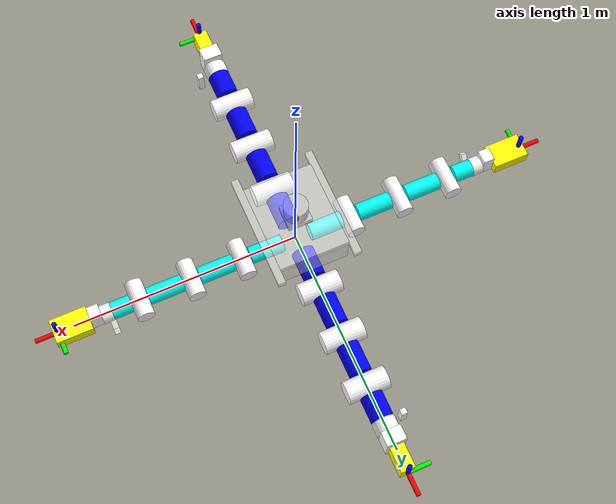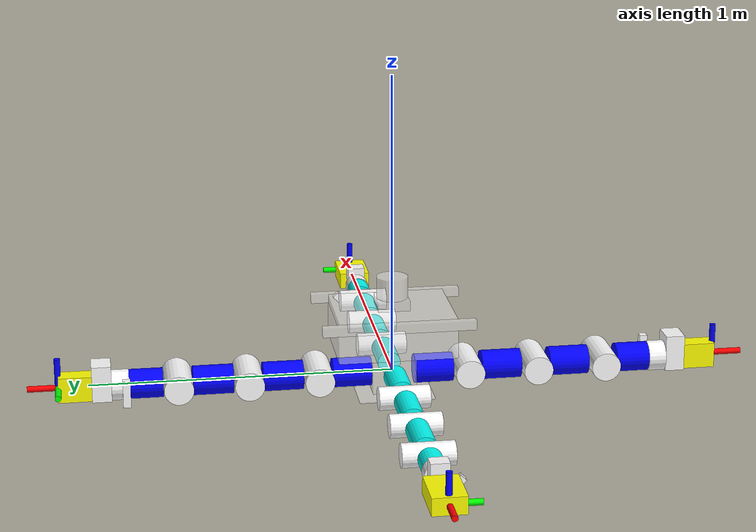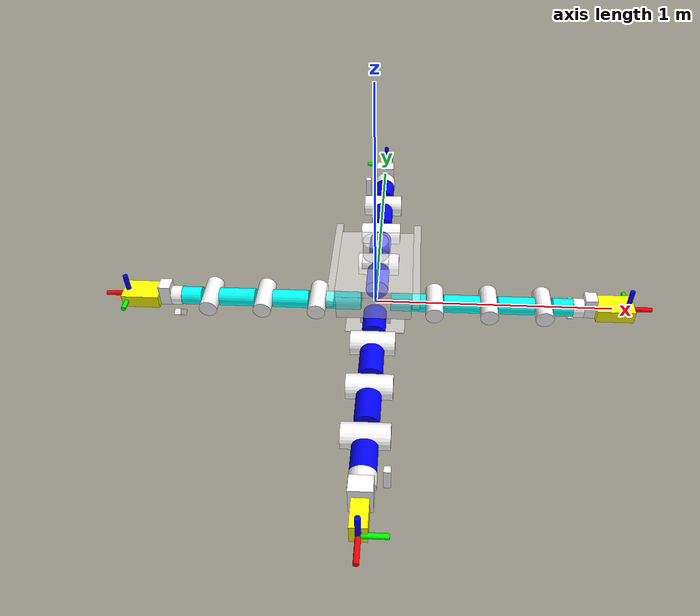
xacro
<?xml version="1.0"?>
<robot xmlns:xacro="http://www.ros.org/wiki/xacro" name="ivr">
    <xacro:arg name="initial_positions_file" default="initial_positions.yaml" />

    <!-- Import ivr urdf file -->
    <xacro:include filename="$(find jaxa_config)/config/jaxa.urdf" />

    <!-- Import control_xacro -->
    <xacro:include filename="ivr.ros2_control.xacro" />

    <xacro:ivr_ros2_control name="FakeSystem" initial_positions_file="$(arg initial_positions_file)"/>

</robot>

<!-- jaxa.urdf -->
<!-- |    This document was autogenerated by xacro from ivr.xacro                      | -->
<!-- |    EDITING THIS FILE BY HAND IS NOT RECOMMENDED                                 | -->
<robot name="ivr">
  <material name="lightblue">
    <color rgba="0.01 1.0 0.97 1.0"/>
  </material>
  <material name="blue">
    <color rgba="0.0 0.0 1.0 1.0"/>
  </material>
  <material name="gray">
    <color rgba="1.0 1.0 1.0 1.0"/>
  </material>
  <material name="lightgray">
    <color rgba="1.0 1.0 1.0 0.5"/>
  </material>
  <material name="red_frame">
    <color rgba="1.0 0.0 0.0 1.0"/>
  </material>
  <material name="green_frame">
    <color rgba="0.0 1.0 0.0 1.0"/>
  </material>
  <material name="blue_frame">
    <color rgba="0.0 0.0 1.0 1.0"/>
  </material>
  <link name="world"/>
  <link name="base_link"/>
  <joint name="WORLD_TO_BASE" type="fixed">
    <parent link="world"/>
    <child link="base_link"/>
    <origin rpy="0 0 0" xyz="0 0 0"/>
  </joint>
  <link name="BODY_LINK1"/>
  <link name="BODY_LINK2"/>
  <link name="BODY_LINK3"/>
  <link name="BODY_LINK4"/>
  <link name="BODY_LINK5"/>
  <joint name="BODY_JOINT_X" type="prismatic">
    <parent link="base_link"/>
    <child link="BODY_LINK1"/>
    <axis xyz="1 0 0"/>
    <origin rpy="0 0 0" xyz="0 0 0"/>
    <limit effort="0" lower="-5.0" upper="5.0" velocity="0"/>
  </joint>
  <joint name="BODY_JOINT_Y" type="prismatic">
    <parent link="BODY_LINK1"/>
    <child link="BODY_LINK2"/>
    <axis xyz="0 1 0"/>
    <origin rpy="0 0 0" xyz="0 0 0"/>
    <limit effort="0" lower="-5.0" upper="5.0" velocity="0"/>
  </joint>
  <joint name="BODY_JOINT_Z" type="prismatic">
    <parent link="BODY_LINK2"/>
    <child link="BODY_LINK3"/>
    <axis xyz="0 0 1"/>
    <origin rpy="0 0 0" xyz="0 0 0"/>
    <limit effort="0" lower="-5.0" upper="5.0" velocity="0"/>
  </joint>
  <joint name="BODY_JOINT_YAW" type="revolute">
    <parent link="BODY_LINK3"/>
    <child link="BODY_LINK4"/>
    <axis xyz="0 0 1"/>
    <origin rpy="0 0 0" xyz="0 0 0"/>
    <limit effort="0" lower="-3.141592653589793" upper="3.141592653589793" velocity="0"/>
  </joint>
  <joint name="BODY_JOINT_PITCH" type="revolute">
    <parent link="BODY_LINK4"/>
    <child link="BODY_LINK5"/>
    <axis xyz="0 1 0"/>
    <origin rpy="0 0 0" xyz="0 0 0"/>
    <limit effort="0" lower="-3.141592653589793" upper="3.141592653589793" velocity="0"/>
  </joint>
  <joint name="BODY_JOINT_ROLL" type="revolute">
    <parent link="BODY_LINK5"/>
    <child link="BODY"/>
    <axis xyz="1 0 0"/>
    <origin rpy="0 0 0" xyz="0 0 0"/>
    <limit effort="0" lower="-3.141592653589793" upper="3.141592653589793" velocity="0"/>
  </joint>
  <link name="BODY">
    <collision>
      <origin rpy="0 0 0" xyz="0 0 0.012499999999999997"/>
      <geometry>
        <box size="0.128 0.145 0.145"/>
      </geometry>
    </collision>
    <collision name="upper_body">
      <origin rpy="0 0 0" xyz="0 0 0.13849999999999998"/>
      <geometry>
        <box size="0.3 0.39 0.107"/>
      </geometry>
    </collision>
    <collision name="lower_plate">
      <origin rpy="0 0 0" xyz="0 0 -0.0625"/>
      <geometry>
        <box size="0.25 0.25 0.005"/>
      </geometry>
    </collision>
    <collision name="short_misumi_frame">
      <origin rpy="0 0 0" xyz="0 0 0.20700000000000002"/>
      <geometry>
        <box size="0.305 0.386 0.03"/>
      </geometry>
    </collision>
    <collision name="long_misumi_frame_front">
      <origin rpy="0 0 0" xyz="0.16749999999999998 0 0.20700000000000002"/>
      <geometry>
        <box size="0.03 0.5 0.03"/>
      </geometry>
    </collision>
    <collision name="long_misumi_frame_rear">
      <origin rpy="0 0 0" xyz="-0.16749999999999998 0 0.20700000000000002"/>
      <geometry>
        <box size="0.03 0.5 0.03"/>
      </geometry>
    </collision>
    <collision name="lidar_box">
      <origin rpy="0 0 0" xyz="0 0 0.238"/>
      <geometry>
        <box size="0.105 0.105 0.032"/>
      </geometry>
    </collision>
    <collision name="lidar_cylinder">
      <origin rpy="0 0 0" xyz="0 0 0.29035"/>
      <geometry>
        <cylinder length="0.0727" radius="0.05165"/>
      </geometry>
    </collision>
    <visual>
      <origin rpy="0 0 0" xyz="0 0 0.012499999999999997"/>
      <geometry>
        <box size="0.128 0.145 0.145"/>
      </geometry>
      <material name="lightgray"/>
    </visual>
    <visual name="upper_body">
      <origin rpy="0 0 0" xyz="0 0 0.13849999999999998"/>
      <geometry>
        <box size="0.3 0.39 0.107"/>
      </geometry>
      <material name="lightgray"/>
    </visual>
    <visual name="lower_plate">
      <origin rpy="0 0 0" xyz="0 0 -0.0625"/>
      <geometry>
        <box size="0.25 0.25 0.005"/>
      </geometry>
      <material name="lightgray"/>
    </visual>
    <visual name="short_misumi_frame">
      <origin rpy="0 0 0" xyz="0 0 0.20700000000000002"/>
      <geometry>
        <box size="0.305 0.386 0.03"/>
      </geometry>
      <material name="lightgray"/>
    </visual>
    <visual name="long_misumi_frame_front">
      <origin rpy="0 0 0" xyz="0.16749999999999998 0 0.20700000000000002"/>
      <geometry>
        <box size="0.03 0.5 0.03"/>
      </geometry>
      <material name="lightgray"/>
    </visual>
    <visual name="long_misumi_frame_rear">
      <origin rpy="0 0 0" xyz="-0.16749999999999998 0 0.20700000000000002"/>
      <geometry>
        <box size="0.03 0.5 0.03"/>
      </geometry>
      <material name="lightgray"/>
    </visual>
    <visual name="lidar_box">
      <origin rpy="0 0 0" xyz="0 0 0.238"/>
      <geometry>
        <box size="0.105 0.105 0.032"/>
      </geometry>
      <material name="lightgray"/>
    </visual>
    <visual name="lidar_cylinder">
      <origin rpy="0 0 0" xyz="0 0 0.29035"/>
      <geometry>
        <cylinder length="0.0727" radius="0.05165"/>
      </geometry>
      <material name="lightgray"/>
    </visual>
  </link>
  <joint name="ARM1_JOINT1" type="revolute">
    <parent link="BODY"/>
    <child link="ARM1_LINK1"/>
    <axis xyz="0 0 1"/>
    <origin rpy="0 -1.5707963267948966 0" xyz="-0.25 0 0"/>
    <limit effort="78.4" lower="-6.283185307179586" upper="6.283185307179586" velocity="2.4543692606170255"/>
  </joint>
  <link name="ARM1_LINK1">
    <collision>
      <geometry>
        <cylinder length="0.148" radius="0.038"/>
      </geometry>
      <origin rpy="0 0 0" xyz="0 0 -0.11199999999999999"/>
    </collision>
    <visual>
      <geometry>
        <cylinder length="0.148" radius="0.038"/>
      </geometry>
      <origin rpy="0 0 0" xyz="0 0 -0.11199999999999999"/>
      <material name="lightblue"/>
    </visual>
  </link>
  <joint name="ARM1_JOINT2" type="revolute">
    <parent link="ARM1_LINK1"/>
    <child link="ARM1_LINK2"/>
    <axis xyz="0 0 1"/>
    <origin rpy="1.5707963267948966 0 0" xyz="0 0 0"/>
    <limit effort="78.4" lower="-2.076942" upper="2.076942" velocity="2.4543692606170255"/>
  </joint>
  <link name="ARM1_LINK2">
    <collision>
      <geometry>
        <cylinder length="0.166" radius="0.038"/>
      </geometry>
      <origin rpy="0 0 0" xyz="0 0 0"/>
    </collision>
    <visual>
      <geometry>
        <cylinder length="0.166" radius="0.038"/>
      </geometry>
      <origin rpy="0 0 0" xyz="0 0 0"/>
      <material name="gray"/>
    </visual>
  </link>
  <joint name="ARM1_JOINT3" type="revolute">
    <parent link="ARM1_LINK2"/>
    <child link="ARM1_LINK3"/>
    <axis xyz="0 0 1"/>
    <origin rpy="-1.5707963267948966 0 0" xyz="0 0.23000000000000004 0"/>
    <limit effort="78.4" lower="-6.283185307179586" upper="6.283185307179586" velocity="2.4543692606170255"/>
  </joint>
  <link name="ARM1_LINK3">
    <collision>
      <geometry>
        <cylinder length="0.15400000000000003" radius="0.038"/>
      </geometry>
      <origin rpy="0 0 0" xyz="0 0 -0.11500000000000002"/>
    </collision>
    <visual>
      <geometry>
        <cylinder length="0.15400000000000003" radius="0.038"/>
      </geometry>
      <origin rpy="0 0 0" xyz="0 0 -0.11500000000000002"/>
      <material name="lightblue"/>
    </visual>
  </link>
  <joint name="ARM1_JOINT4" type="revolute">
    <parent link="ARM1_LINK3"/>
    <child link="ARM1_LINK4"/>
    <axis xyz="0 0 1"/>
    <origin rpy="1.5707963267948966 0 0" xyz="0 0 0"/>
    <limit effort="78.4" lower="-2.076942" upper="2.076942" velocity="2.4543692606170255"/>
  </joint>
  <link name="ARM1_LINK4">
    <collision>
      <geometry>
        <cylinder length="0.166" radius="0.038"/>
      </geometry>
      <origin rpy="0 0 0" xyz="0 0 0"/>
    </collision>
    <visual>
      <geometry>
        <cylinder length="0.166" radius="0.038"/>
      </geometry>
      <origin rpy="0 0 0" xyz="0 0 0"/>
      <material name="gray"/>
    </visual>
  </link>
  <joint name="ARM1_JOINT5" type="revolute">
    <parent link="ARM1_LINK4"/>
    <child link="ARM1_LINK5"/>
    <axis xyz="0 0 1"/>
    <origin rpy="-1.5707963267948966 0 0" xyz="0 0.23000000000000004 0"/>
    <limit effort="58.8" lower="-6.283185307179586" upper="6.283185307179586" velocity="3.2724923474893677"/>
  </joint>
  <link name="ARM1_LINK5">
    <collision>
      <geometry>
        <cylinder length="0.15400000000000003" radius="0.038"/>
      </geometry>
      <origin rpy="0 0 0" xyz="0 0 -0.11500000000000002"/>
    </collision>
    <visual>
      <geometry>
        <cylinder length="0.15400000000000003" radius="0.038"/>
      </geometry>
      <origin rpy="0 0 0" xyz="0 0 -0.11500000000000002"/>
      <material name="lightblue"/>
    </visual>
  </link>
  <joint name="ARM1_JOINT6" type="revolute">
    <parent link="ARM1_LINK5"/>
    <child link="ARM1_LINK6"/>
    <axis xyz="0 0 1"/>
    <origin rpy="1.5707963267948966 0 0" xyz="0 0 0"/>
    <limit effort="58.8" lower="-2.076942" upper="2.076942" velocity="3.2724923474893677"/>
  </joint>
  <link name="ARM1_LINK6">
    <collision>
      <geometry>
        <cylinder length="0.166" radius="0.038"/>
      </geometry>
      <origin rpy="0 0 0" xyz="0 0 0"/>
    </collision>
    <visual>
      <geometry>
        <cylinder length="0.166" radius="0.038"/>
      </geometry>
      <origin rpy="0 0 0" xyz="0 0 0"/>
      <material name="gray"/>
    </visual>
  </link>
  <joint name="ARM1_JOINT7" type="revolute">
    <parent link="ARM1_LINK6"/>
    <child link="ARM1_LINK7"/>
    <axis xyz="0 0 1"/>
    <origin rpy="-1.5707963267948966 0 0" xyz="0 0.12315000000000001 0"/>
    <limit effort="58.8" lower="-6.283185307179586" upper="6.283185307179586" velocity="3.2724923474893677"/>
  </joint>
  <link name="ARM1_LINK7">
    <collision>
      <geometry>
        <cylinder length="0.08515" radius="0.038"/>
      </geometry>
      <origin rpy="0 0 0" xyz="0 0 -0.042575"/>
    </collision>
    <visual>
      <geometry>
        <cylinder length="0.08515" radius="0.038"/>
      </geometry>
      <origin rpy="0 0 0" xyz="0 0 -0.042575"/>
      <material name="lightblue"/>
    </visual>
  </link>
  <joint name="ARM1_JOINT_TOOLCHANGER" type="fixed">
    <parent link="ARM1_LINK7"/>
    <child link="ARM1_TOOLCHANGER"/>
    <origin rpy="0 0 0" xyz="0 0 0.095"/>
  </joint>
  <link name="ARM1_TOOLCHANGER">
    <collision name="ft">
      <geometry>
        <cylinder length="0.045" radius="0.04"/>
      </geometry>
      <origin rpy="0 0 0" xyz="0 0 -0.07250000000000001"/>
    </collision>
    <collision name="tc">
      <geometry>
        <box size="0.0927 0.0594 0.05"/>
      </geometry>
      <origin rpy="0 0 0" xyz="0.016649999999999998 0 -0.025"/>
    </collision>
    <visual name="ft">
      <geometry>
        <cylinder length="0.045" radius="0.04"/>
      </geometry>
      <origin rpy="0 0 0" xyz="0 0 -0.07250000000000001"/>
      <material name="gray"/>
    </visual>
    <visual name="tc">
      <geometry>
        <box size="0.0927 0.0594 0.05"/>
      </geometry>
      <origin rpy="0 0 0" xyz="0.016649999999999998 0 -0.025"/>
      <material name="gray"/>
    </visual>
  </link>
  <joint name="ARM1_JOINT_CAM" type="fixed">
    <parent link="ARM1_TOOLCHANGER"/>
    <child link="ARM1_REALSENSE"/>
    <origin rpy="0 0 -0.7853981633974483" xyz="-0.074953 -0.028991 -0.07410000000000005"/>
  </joint>
  <link name="ARM1_REALSENSE">
    <visual name="camera">
      <geometry>
        <box size="0.09 0.025 0.0249"/>
      </geometry>
      <origin rpy="0 0 0" xyz="0.03250004187696723 0 -0.01245"/>
      <material name="gray"/>
    </visual>
    <collision name="camera">
      <geometry>
        <box size="0.09 0.025 0.0249"/>
      </geometry>
      <origin rpy="0 0 0" xyz="0.03250004187696723 0 -0.01245"/>
    </collision>
  </link>
  <joint name="ARM2_JOINT1" type="revolute">
    <parent link="BODY"/>
    <child link="ARM2_LINK1"/>
    <axis xyz="0 0 1"/>
    <origin rpy="0 -1.5707963267948966 3.141592653589793" xyz="0.25 0 0"/>
    <limit effort="78.4" lower="-6.283185307179586" upper="6.283185307179586" velocity="2.4543692606170255"/>
  </joint>
  <link name="ARM2_LINK1">
    <collision>
      <geometry>
        <cylinder length="0.148" radius="0.038"/>
      </geometry>
      <origin rpy="0 0 0" xyz="0 0 -0.11199999999999999"/>
    </collision>
    <visual>
      <geometry>
        <cylinder length="0.148" radius="0.038"/>
      </geometry>
      <origin rpy="0 0 0" xyz="0 0 -0.11199999999999999"/>
      <material name="lightblue"/>
    </visual>
  </link>
  <joint name="ARM2_JOINT2" type="revolute">
    <parent link="ARM2_LINK1"/>
    <child link="ARM2_LINK2"/>
    <axis xyz="0 0 1"/>
    <origin rpy="1.5707963267948966 0 0" xyz="0 0 0"/>
    <limit effort="78.4" lower="-2.076942" upper="2.076942" velocity="2.4543692606170255"/>
  </joint>
  <link name="ARM2_LINK2">
    <collision>
      <geometry>
        <cylinder length="0.166" radius="0.038"/>
      </geometry>
      <origin rpy="0 0 0" xyz="0 0 0"/>
    </collision>
    <visual>
      <geometry>
        <cylinder length="0.166" radius="0.038"/>
      </geometry>
      <origin rpy="0 0 0" xyz="0 0 0"/>
      <material name="gray"/>
    </visual>
  </link>
  <joint name="ARM2_JOINT3" type="revolute">
    <parent link="ARM2_LINK2"/>
    <child link="ARM2_LINK3"/>
    <axis xyz="0 0 1"/>
    <origin rpy="-1.5707963267948966 0 0" xyz="0 0.23000000000000004 0"/>
    <limit effort="78.4" lower="-6.283185307179586" upper="6.283185307179586" velocity="2.4543692606170255"/>
  </joint>
  <link name="ARM2_LINK3">
    <collision>
      <geometry>
        <cylinder length="0.15400000000000003" radius="0.038"/>
      </geometry>
      <origin rpy="0 0 0" xyz="0 0 -0.11500000000000002"/>
    </collision>
    <visual>
      <geometry>
        <cylinder length="0.15400000000000003" radius="0.038"/>
      </geometry>
      <origin rpy="0 0 0" xyz="0 0 -0.11500000000000002"/>
      <material name="lightblue"/>
    </visual>
  </link>
  <joint name="ARM2_JOINT4" type="revolute">
    <parent link="ARM2_LINK3"/>
    <child link="ARM2_LINK4"/>
    <axis xyz="0 0 1"/>
    <origin rpy="1.5707963267948966 0 0" xyz="0 0 0"/>
    <limit effort="78.4" lower="-2.076942" upper="2.076942" velocity="2.4543692606170255"/>
  </joint>
  <link name="ARM2_LINK4">
    <collision>
      <geometry>
        <cylinder length="0.166" radius="0.038"/>
      </geometry>
      <origin rpy="0 0 0" xyz="0 0 0"/>
    </collision>
    <visual>
      <geometry>
        <cylinder length="0.166" radius="0.038"/>
      </geometry>
      <origin rpy="0 0 0" xyz="0 0 0"/>
      <material name="gray"/>
    </visual>
  </link>
  <joint name="ARM2_JOINT5" type="revolute">
    <parent link="ARM2_LINK4"/>
    <child link="ARM2_LINK5"/>
    <axis xyz="0 0 1"/>
    <origin rpy="-1.5707963267948966 0 0" xyz="0 0.23000000000000004 0"/>
    <limit effort="58.8" lower="-6.283185307179586" upper="6.283185307179586" velocity="3.2724923474893677"/>
  </joint>
  <link name="ARM2_LINK5">
    <collision>
      <geometry>
        <cylinder length="0.15400000000000003" radius="0.038"/>
      </geometry>
      <origin rpy="0 0 0" xyz="0 0 -0.11500000000000002"/>
    </collision>
    <visual>
      <geometry>
        <cylinder length="0.15400000000000003" radius="0.038"/>
      </geometry>
      <origin rpy="0 0 0" xyz="0 0 -0.11500000000000002"/>
      <material name="lightblue"/>
    </visual>
  </link>
  <joint name="ARM2_JOINT6" type="revolute">
    <parent link="ARM2_LINK5"/>
    <child link="ARM2_LINK6"/>
    <axis xyz="0 0 1"/>
    <origin rpy="1.5707963267948966 0 0" xyz="0 0 0"/>
    <limit effort="58.8" lower="-2.076942" upper="2.076942" velocity="3.2724923474893677"/>
  </joint>
  <link name="ARM2_LINK6">
    <collision>
      <geometry>
        <cylinder length="0.166" radius="0.038"/>
      </geometry>
      <origin rpy="0 0 0" xyz="0 0 0"/>
    </collision>
    <visual>
      <geometry>
        <cylinder length="0.166" radius="0.038"/>
      </geometry>
      <origin rpy="0 0 0" xyz="0 0 0"/>
      <material name="gray"/>
    </visual>
  </link>
  <joint name="ARM2_JOINT7" type="revolute">
    <parent link="ARM2_LINK6"/>
    <child link="ARM2_LINK7"/>
    <axis xyz="0 0 1"/>
    <origin rpy="-1.5707963267948966 0 0" xyz="0 0.12315000000000001 0"/>
    <limit effort="58.8" lower="-6.283185307179586" upper="6.283185307179586" velocity="3.2724923474893677"/>
  </joint>
  <link name="ARM2_LINK7">
    <collision>
      <geometry>
        <cylinder length="0.08515" radius="0.038"/>
      </geometry>
      <origin rpy="0 0 0" xyz="0 0 -0.042575"/>
    </collision>
    <visual>
      <geometry>
        <cylinder length="0.08515" radius="0.038"/>
      </geometry>
      <origin rpy="0 0 0" xyz="0 0 -0.042575"/>
      <material name="lightblue"/>
    </visual>
  </link>
  <joint name="ARM2_JOINT_TOOLCHANGER" type="fixed">
    <parent link="ARM2_LINK7"/>
    <child link="ARM2_TOOLCHANGER"/>
    <origin rpy="0 0 0" xyz="0 0 0.095"/>
  </joint>
  <link name="ARM2_TOOLCHANGER">
    <collision name="ft">
      <geometry>
        <cylinder length="0.045" radius="0.04"/>
      </geometry>
      <origin rpy="0 0 0" xyz="0 0 -0.07250000000000001"/>
    </collision>
    <collision name="tc">
      <geometry>
        <box size="0.0927 0.0594 0.05"/>
      </geometry>
      <origin rpy="0 0 0" xyz="0.016649999999999998 0 -0.025"/>
    </collision>
    <visual name="ft">
      <geometry>
        <cylinder length="0.045" radius="0.04"/>
      </geometry>
      <origin rpy="0 0 0" xyz="0 0 -0.07250000000000001"/>
      <material name="gray"/>
    </visual>
    <visual name="tc">
      <geometry>
        <box size="0.0927 0.0594 0.05"/>
      </geometry>
      <origin rpy="0 0 0" xyz="0.016649999999999998 0 -0.025"/>
      <material name="gray"/>
    </visual>
  </link>
  <joint name="ARM2_JOINT_CAM" type="fixed">
    <parent link="ARM2_TOOLCHANGER"/>
    <child link="ARM2_REALSENSE"/>
    <origin rpy="0 0 -0.7853981633974483" xyz="-0.074953 -0.028991 -0.07410000000000005"/>
  </joint>
  <link name="ARM2_REALSENSE">
    <visual name="camera">
      <geometry>
        <box size="0.09 0.025 0.0249"/>
      </geometry>
      <origin rpy="0 0 0" xyz="0.03250004187696723 0 -0.01245"/>
      <material name="gray"/>
    </visual>
    <collision name="camera">
      <geometry>
        <box size="0.09 0.025 0.0249"/>
      </geometry>
      <origin rpy="0 0 0" xyz="0.03250004187696723 0 -0.01245"/>
    </collision>
  </link>
  <joint name="ARM3_JOINT1" type="revolute">
    <parent link="BODY"/>
    <child link="ARM3_LINK1"/>
    <axis xyz="0 0 1"/>
    <origin rpy="0 -1.5707963267948966 1.5707963267948966" xyz="0 -0.25 0"/>
    <limit effort="238.4" lower="-6.283185307179586" upper="6.283185307179586" velocity="1.4398966328953218"/>
  </joint>
  <link name="ARM3_LINK1">
    <collision>
      <geometry>
        <cylinder length="0.129" radius="0.0485"/>
      </geometry>
      <origin rpy="0 0 0" xyz="0 0 -0.113"/>
    </collision>
    <visual>
      <geometry>
        <cylinder length="0.129" radius="0.0485"/>
      </geometry>
      <origin rpy="0 0 0" xyz="0 0 -0.113"/>
      <material name="blue"/>
    </visual>
  </link>
  <joint name="ARM3_JOINT2" type="revolute">
    <parent link="ARM3_LINK1"/>
    <child link="ARM3_LINK2"/>
    <axis xyz="0 0 1"/>
    <origin rpy="1.5707963267948966 0 0" xyz="0 0 0"/>
    <limit effort="238.4" lower="-2.076942" upper="2.076942" velocity="1.4398966328953218"/>
  </joint>
  <link name="ARM3_LINK2">
    <collision>
      <geometry>
        <cylinder length="0.18" radius="0.0485"/>
      </geometry>
      <origin rpy="0 0 0" xyz="0 0 0"/>
    </collision>
    <visual>
      <geometry>
        <cylinder length="0.18" radius="0.0485"/>
      </geometry>
      <origin rpy="0 0 0" xyz="0 0 0"/>
      <material name="gray"/>
    </visual>
  </link>
  <joint name="ARM3_JOINT3" type="revolute">
    <parent link="ARM3_LINK2"/>
    <child link="ARM3_LINK3"/>
    <axis xyz="0 0 1"/>
    <origin rpy="-1.5707963267948966 0 0" xyz="0 0.23 0"/>
    <limit effort="238.4" lower="-6.283185307179586" upper="6.283185307179586" velocity="1.4398966328953218"/>
  </joint>
  <link name="ARM3_LINK3">
    <collision>
      <geometry>
        <cylinder length="0.133" radius="0.0485"/>
      </geometry>
      <origin rpy="0 0 0" xyz="0 0 -0.115"/>
    </collision>
    <visual>
      <geometry>
        <cylinder length="0.133" radius="0.0485"/>
      </geometry>
      <origin rpy="0 0 0" xyz="0 0 -0.115"/>
      <material name="blue"/>
    </visual>
  </link>
  <joint name="ARM3_JOINT4" type="revolute">
    <parent link="ARM3_LINK3"/>
    <child link="ARM3_LINK4"/>
    <axis xyz="0 0 1"/>
    <origin rpy="1.5707963267948966 0 0" xyz="0 0 0"/>
    <limit effort="238.4" lower="-2.076942" upper="2.076942" velocity="1.4398966328953218"/>
  </joint>
  <link name="ARM3_LINK4">
    <collision>
      <geometry>
        <cylinder length="0.18" radius="0.0485"/>
      </geometry>
      <origin rpy="0 0 0" xyz="0 0 0"/>
    </collision>
    <visual>
      <geometry>
        <cylinder length="0.18" radius="0.0485"/>
      </geometry>
      <origin rpy="0 0 0" xyz="0 0 0"/>
      <material name="gray"/>
    </visual>
  </link>
  <joint name="ARM3_JOINT5" type="revolute">
    <parent link="ARM3_LINK4"/>
    <child link="ARM3_LINK5"/>
    <axis xyz="0 0 1"/>
    <origin rpy="-1.5707963267948966 0 0" xyz="0 0.23 0"/>
    <limit effort="238.4" lower="-6.283185307179586" upper="6.283185307179586" velocity="1.4398966328953218"/>
  </joint>
  <link name="ARM3_LINK5">
    <collision>
      <geometry>
        <cylinder length="0.133" radius="0.0485"/>
      </geometry>
      <origin rpy="0 0 0" xyz="0 0 -0.115"/>
    </collision>
    <visual>
      <geometry>
        <cylinder length="0.133" radius="0.0485"/>
      </geometry>
      <origin rpy="0 0 0" xyz="0 0 -0.115"/>
      <material name="blue"/>
    </visual>
  </link>
  <joint name="ARM3_JOINT6" type="revolute">
    <parent link="ARM3_LINK5"/>
    <child link="ARM3_LINK6"/>
    <axis xyz="0 0 1"/>
    <origin rpy="1.5707963267948966 0 0" xyz="0 0 0"/>
    <limit effort="238.4" lower="-2.076942" upper="2.076942" velocity="1.4398966328953218"/>
  </joint>
  <link name="ARM3_LINK6">
    <collision>
      <geometry>
        <cylinder length="0.18" radius="0.0485"/>
      </geometry>
      <origin rpy="0 0 0" xyz="0 0 0"/>
    </collision>
    <visual>
      <geometry>
        <cylinder length="0.18" radius="0.0485"/>
      </geometry>
      <origin rpy="0 0 0" xyz="0 0 0"/>
      <material name="gray"/>
    </visual>
  </link>
  <joint name="ARM3_JOINT7" type="revolute">
    <parent link="ARM3_LINK6"/>
    <child link="ARM3_LINK7"/>
    <axis xyz="0 0 1"/>
    <origin rpy="-1.5707963267948966 0 0" xyz="0 0.159 0"/>
    <limit effort="238.4" lower="-6.283185307179586" upper="6.283185307179586" velocity="1.4398966328953218"/>
  </joint>
  <link name="ARM3_LINK7">
    <collision>
      <geometry>
        <cylinder length="0.1105" radius="0.0485"/>
      </geometry>
      <origin rpy="0 0 0" xyz="0 0 -0.05525"/>
    </collision>
    <visual>
      <geometry>
        <cylinder length="0.1105" radius="0.0485"/>
      </geometry>
      <origin rpy="0 0 0" xyz="0 0 -0.05525"/>
      <material name="blue"/>
    </visual>
  </link>
  <joint name="ARM3_JOINT_TOOLCHANGER" type="fixed">
    <parent link="ARM3_LINK7"/>
    <child link="ARM3_TOOLCHANGER"/>
    <origin rpy="0 0 0" xyz="0 0 0.12045"/>
  </joint>
  <link name="ARM3_TOOLCHANGER">
    <collision name="ft">
      <geometry>
        <cylinder length="0.057" radius="0.05"/>
      </geometry>
      <origin rpy="0 0 0" xyz="0 0 -0.09195"/>
    </collision>
    <collision name="tc">
      <geometry>
        <box size="0.1205 0.085 0.06345"/>
      </geometry>
      <origin rpy="0 0 0" xyz="0.017750000000000002 0 -0.031725"/>
    </collision>
    <visual name="ft">
      <geometry>
        <cylinder length="0.057" radius="0.05"/>
      </geometry>
      <origin rpy="0 0 0" xyz="0 0 -0.09195"/>
      <material name="gray"/>
    </visual>
    <visual name="tc">
      <geometry>
        <box size="0.1205 0.085 0.06345"/>
      </geometry>
      <origin rpy="0 0 0" xyz="0.017750000000000002 0 -0.031725"/>
      <material name="gray"/>
    </visual>
  </link>
  <joint name="ARM3_JOINT_CAM" type="fixed">
    <parent link="ARM3_TOOLCHANGER"/>
    <child link="ARM3_REALSENSE"/>
    <origin rpy="0 0 0" xyz="-0.0325 -0.0835 -0.09855000000000003"/>
  </joint>
  <link name="ARM3_REALSENSE">
    <visual name="camera">
      <geometry>
        <box size="0.09 0.025 0.0249"/>
      </geometry>
      <origin rpy="0 0 0" xyz="0.0325 0 -0.01245"/>
      <material name="gray"/>
    </visual>
    <collision name="camera">
      <geometry>
        <box size="0.09 0.025 0.0249"/>
      </geometry>
      <origin rpy="0 0 0" xyz="0.0325 0 -0.01245"/>
    </collision>
  </link>
  <joint name="ARM4_JOINT1" type="revolute">
    <parent link="BODY"/>
    <child link="ARM4_LINK1"/>
    <axis xyz="0 0 1"/>
    <origin rpy="0 -1.5707963267948966 -1.5707963267948966" xyz="0 0.25 0"/>
    <limit effort="238.4" lower="-6.283185307179586" upper="6.283185307179586" velocity="1.4398966328953218"/>
  </joint>
  <link name="ARM4_LINK1">
    <collision>
      <geometry>
        <cylinder length="0.129" radius="0.0485"/>
      </geometry>
      <origin rpy="0 0 0" xyz="0 0 -0.113"/>
    </collision>
    <visual>
      <geometry>
        <cylinder length="0.129" radius="0.0485"/>
      </geometry>
      <origin rpy="0 0 0" xyz="0 0 -0.113"/>
      <material name="blue"/>
    </visual>
  </link>
  <joint name="ARM4_JOINT2" type="revolute">
    <parent link="ARM4_LINK1"/>
    <child link="ARM4_LINK2"/>
    <axis xyz="0 0 1"/>
    <origin rpy="1.5707963267948966 0 0" xyz="0 0 0"/>
    <limit effort="238.4" lower="-2.076942" upper="2.076942" velocity="1.4398966328953218"/>
  </joint>
  <link name="ARM4_LINK2">
    <collision>
      <geometry>
        <cylinder length="0.18" radius="0.0485"/>
      </geometry>
      <origin rpy="0 0 0" xyz="0 0 0"/>
    </collision>
    <visual>
      <geometry>
        <cylinder length="0.18" radius="0.0485"/>
      </geometry>
      <origin rpy="0 0 0" xyz="0 0 0"/>
      <material name="gray"/>
    </visual>
  </link>
  <joint name="ARM4_JOINT3" type="revolute">
    <parent link="ARM4_LINK2"/>
    <child link="ARM4_LINK3"/>
    <axis xyz="0 0 1"/>
    <origin rpy="-1.5707963267948966 0 0" xyz="0 0.23 0"/>
    <limit effort="238.4" lower="-6.283185307179586" upper="6.283185307179586" velocity="1.4398966328953218"/>
  </joint>
  <link name="ARM4_LINK3">
    <collision>
      <geometry>
        <cylinder length="0.133" radius="0.0485"/>
      </geometry>
      <origin rpy="0 0 0" xyz="0 0 -0.115"/>
    </collision>
    <visual>
      <geometry>
        <cylinder length="0.133" radius="0.0485"/>
      </geometry>
      <origin rpy="0 0 0" xyz="0 0 -0.115"/>
      <material name="blue"/>
    </visual>
  </link>
  <joint name="ARM4_JOINT4" type="revolute">
    <parent link="ARM4_LINK3"/>
    <child link="ARM4_LINK4"/>
    <axis xyz="0 0 1"/>
    <origin rpy="1.5707963267948966 0 0" xyz="0 0 0"/>
    <limit effort="238.4" lower="-2.076942" upper="2.076942" velocity="1.4398966328953218"/>
  </joint>
  <link name="ARM4_LINK4">
    <collision>
      <geometry>
        <cylinder length="0.18" radius="0.0485"/>
      </geometry>
      <origin rpy="0 0 0" xyz="0 0 0"/>
    </collision>
    <visual>
      <geometry>
        <cylinder length="0.18" radius="0.0485"/>
      </geometry>
      <origin rpy="0 0 0" xyz="0 0 0"/>
      <material name="gray"/>
    </visual>
  </link>
  <joint name="ARM4_JOINT5" type="revolute">
    <parent link="ARM4_LINK4"/>
    <child link="ARM4_LINK5"/>
    <axis xyz="0 0 1"/>
    <origin rpy="-1.5707963267948966 0 0" xyz="0 0.23 0"/>
    <limit effort="238.4" lower="-6.283185307179586" upper="6.283185307179586" velocity="1.4398966328953218"/>
  </joint>
  <link name="ARM4_LINK5">
    <collision>
      <geometry>
        <cylinder length="0.133" radius="0.0485"/>
      </geometry>
      <origin rpy="0 0 0" xyz="0 0 -0.115"/>
    </collision>
    <visual>
      <geometry>
        <cylinder length="0.133" radius="0.0485"/>
      </geometry>
      <origin rpy="0 0 0" xyz="0 0 -0.115"/>
      <material name="blue"/>
    </visual>
  </link>
  <joint name="ARM4_JOINT6" type="revolute">
    <parent link="ARM4_LINK5"/>
    <child link="ARM4_LINK6"/>
    <axis xyz="0 0 1"/>
    <origin rpy="1.5707963267948966 0 0" xyz="0 0 0"/>
    <limit effort="238.4" lower="-2.076942" upper="2.076942" velocity="1.4398966328953218"/>
  </joint>
  <link name="ARM4_LINK6">
    <collision>
      <geometry>
        <cylinder length="0.18" radius="0.0485"/>
      </geometry>
      <origin rpy="0 0 0" xyz="0 0 0"/>
    </collision>
    <visual>
      <geometry>
        <cylinder length="0.18" radius="0.0485"/>
      </geometry>
      <origin rpy="0 0 0" xyz="0 0 0"/>
      <material name="gray"/>
    </visual>
  </link>
  <joint name="ARM4_JOINT7" type="revolute">
    <parent link="ARM4_LINK6"/>
    <child link="ARM4_LINK7"/>
    <axis xyz="0 0 1"/>
    <origin rpy="-1.5707963267948966 0 0" xyz="0 0.159 0"/>
    <limit effort="238.4" lower="-6.283185307179586" upper="6.283185307179586" velocity="1.4398966328953218"/>
  </joint>
  <link name="ARM4_LINK7">
    <collision>
      <geometry>
        <cylinder length="0.1105" radius="0.0485"/>
      </geometry>
      <origin rpy="0 0 0" xyz="0 0 -0.05525"/>
    </collision>
    <visual>
      <geometry>
        <cylinder length="0.1105" radius="0.0485"/>
      </geometry>
      <origin rpy="0 0 0" xyz="0 0 -0.05525"/>
      <material name="blue"/>
    </visual>
  </link>
  <joint name="ARM4_JOINT_TOOLCHANGER" type="fixed">
    <parent link="ARM4_LINK7"/>
    <child link="ARM4_TOOLCHANGER"/>
    <origin rpy="0 0 0" xyz="0 0 0.12045"/>
  </joint>
  <link name="ARM4_TOOLCHANGER">
    <collision name="ft">
      <geometry>
        <cylinder length="0.057" radius="0.05"/>
      </geometry>
      <origin rpy="0 0 0" xyz="0 0 -0.09195"/>
    </collision>
    <collision name="tc">
      <geometry>
        <box size="0.1205 0.085 0.06345"/>
      </geometry>
      <origin rpy="0 0 0" xyz="0.017750000000000002 0 -0.031725"/>
    </collision>
    <visual name="ft">
      <geometry>
        <cylinder length="0.057" radius="0.05"/>
      </geometry>
      <origin rpy="0 0 0" xyz="0 0 -0.09195"/>
      <material name="gray"/>
    </visual>
    <visual name="tc">
      <geometry>
        <box size="0.1205 0.085 0.06345"/>
      </geometry>
      <origin rpy="0 0 0" xyz="0.017750000000000002 0 -0.031725"/>
      <material name="gray"/>
    </visual>
  </link>
  <joint name="ARM4_JOINT_CAM" type="fixed">
    <parent link="ARM4_TOOLCHANGER"/>
    <child link="ARM4_REALSENSE"/>
    <origin rpy="0 0 0" xyz="-0.0325 -0.0835 -0.09855000000000003"/>
  </joint>
  <link name="ARM4_REALSENSE">
    <visual name="camera">
      <geometry>
        <box size="0.09 0.025 0.0249"/>
      </geometry>
      <origin rpy="0 0 0" xyz="0.0325 0 -0.01245"/>
      <material name="gray"/>
    </visual>
    <collision name="camera">
      <geometry>
        <box size="0.09 0.025 0.0249"/>
      </geometry>
      <origin rpy="0 0 0" xyz="0.0325 0 -0.01245"/>
    </collision>
  </link>
  <material name="yellow_ARM1">
    <color rgba="1.0 1.0 0.0 1.0"/>
  </material>
  <link name="ARM1_ENDEFFECTOR">
    <collision name="tool">
      <geometry>
        <box size="0.056 0.107 0.158587"/>
      </geometry>
      <origin rpy="0 0 0" xyz="0 0 -0.06009364000000002"/>
    </collision>
    <visual name="tool">
      <geometry>
        <box size="0.056 0.107 0.158587"/>
      </geometry>
      <origin rpy="0 0 0" xyz="0 0 -0.06009364000000002"/>
      <material name="yellow_ARM1"/>
    </visual>
  </link>
  <joint name="ARM1_JOINT_ENDEFFECTOR" type="fixed">
    <parent link="ARM1_TOOLCHANGER"/>
    <child link="ARM1_ENDEFFECTOR"/>
    <origin rpy="0 0 0" xyz="0 0 0.13938714000000002"/>
  </joint>
  <joint name="ARM1_JOINT_TOOL" type="fixed">
    <parent link="ARM1_ENDEFFECTOR"/>
    <child link="ARM1_TOOLFRAME"/>
    <origin rpy="3.141592653589793 -1.5707963267948966 0" xyz="0 0 0"/>
  </joint>
  <link name="ARM1_TOOLFRAME">
    <visual name="arrow_ee_x">
      <geometry>
        <cylinder length="0.1" radius="0.01"/>
      </geometry>
      <origin rpy="0 1.5707963267948966 0" xyz="0.05 0 0"/>
      <material name="red_frame"/>
    </visual>
    <visual name="arrow_ee_y">
      <geometry>
        <cylinder length="0.1" radius="0.01"/>
      </geometry>
      <origin rpy="1.5707963267948966 0 0" xyz="0 0.05 0"/>
      <material name="green_frame"/>
    </visual>
    <visual name="arrow_ee_z">
      <geometry>
        <cylinder length="0.1" radius="0.01"/>
      </geometry>
      <origin rpy="0 0 0" xyz="0 0 0.05"/>
      <material name="blue_frame"/>
    </visual>
  </link>
  <joint name="ARM1_GRASP" type="fixed">
    <parent link="ARM1_TOOLFRAME"/>
    <child link="grasp_link_1"/>
    <origin rpy="0 0 0" xyz="0 0 0"/>
  </joint>
  <link name="grasp_link_1">
  </link>
  <joint name="ARM1_GRIPPER" type="revolute">
    <parent link="grasp_link_1"/>
    <child link="gripper_1"/>
    <origin rpy="0 0 0" xyz="0 0 0"/>
    <axis xyz="0 0 1"/>
    <limit effort="78.4" lower="-6.283185307179586" upper="6.283185307179586" velocity="2.4543692606170255"/>
  </joint>
  <link name="gripper_1">
  </link>
  <material name="yellow_ARM2">
    <color rgba="1.0 1.0 0.0 1.0"/>
  </material>
  <link name="ARM2_ENDEFFECTOR">
    <collision name="tool">
      <geometry>
        <box size="0.056 0.107 0.158587"/>
      </geometry>
      <origin rpy="0 0 0" xyz="0 0 -0.06009364000000002"/>
    </collision>
    <visual name="tool">
      <geometry>
        <box size="0.056 0.107 0.158587"/>
      </geometry>
      <origin rpy="0 0 0" xyz="0 0 -0.06009364000000002"/>
      <material name="yellow_ARM2"/>
    </visual>
  </link>
  <joint name="ARM2_JOINT_ENDEFFECTOR" type="fixed">
    <parent link="ARM2_TOOLCHANGER"/>
    <child link="ARM2_ENDEFFECTOR"/>
    <origin rpy="0 0 0" xyz="0 0 0.13938714000000002"/>
  </joint>
  <joint name="ARM2_JOINT_TOOL" type="fixed">
    <parent link="ARM2_ENDEFFECTOR"/>
    <child link="ARM2_TOOLFRAME"/>
    <origin rpy="3.141592653589793 -1.5707963267948966 0" xyz="0 0 0"/>
  </joint>
  <link name="ARM2_TOOLFRAME">
    <visual name="arrow_ee_x">
      <geometry>
        <cylinder length="0.1" radius="0.01"/>
      </geometry>
      <origin rpy="0 1.5707963267948966 0" xyz="0.05 0 0"/>
      <material name="red_frame"/>
    </visual>
    <visual name="arrow_ee_y">
      <geometry>
        <cylinder length="0.1" radius="0.01"/>
      </geometry>
      <origin rpy="1.5707963267948966 0 0" xyz="0 0.05 0"/>
      <material name="green_frame"/>
    </visual>
    <visual name="arrow_ee_z">
      <geometry>
        <cylinder length="0.1" radius="0.01"/>
      </geometry>
      <origin rpy="0 0 0" xyz="0 0 0.05"/>
      <material name="blue_frame"/>
    </visual>
  </link>
  <joint name="ARM2_GRASP" type="fixed">
    <parent link="ARM2_TOOLFRAME"/>
    <child link="grasp_link_2"/>
    <origin rpy="0 0 0" xyz="0 0 0"/>
  </joint>
  <link name="grasp_link_2">
  </link>
  <material name="yellow_ARM3">
    <color rgba="1.0 1.0 0.0 1.0"/>
  </material>
  <link name="ARM3_ENDEFFECTOR">
    <collision name="tool">
      <geometry>
        <box size="0.084 0.062 0.108"/>
      </geometry>
      <origin rpy="0 0 0" xyz="0 0 -0.054"/>
    </collision>
    <visual name="tool">
      <geometry>
        <box size="0.084 0.062 0.108"/>
      </geometry>
      <origin rpy="0 0 0" xyz="0 0 -0.054"/>
      <material name="yellow_ARM3"/>
    </visual>
  </link>
  <joint name="ARM3_JOINT_ENDEFFECTOR" type="fixed">
    <parent link="ARM3_TOOLCHANGER"/>
    <child link="ARM3_ENDEFFECTOR"/>
    <origin rpy="0 0 0" xyz="0 0 0.108"/>
  </joint>
  <joint name="ARM3_JOINT_TOOL" type="fixed">
    <parent link="ARM3_ENDEFFECTOR"/>
    <child link="ARM3_TOOLFRAME"/>
    <origin rpy="3.141592653589793 -1.5707963267948966 0" xyz="0 0 0"/>
  </joint>
  <link name="ARM3_TOOLFRAME">
    <visual name="arrow_ee_x">
      <geometry>
        <cylinder length="0.1" radius="0.01"/>
      </geometry>
      <origin rpy="0 1.5707963267948966 0" xyz="0.05 0 0"/>
      <material name="red_frame"/>
    </visual>
    <visual name="arrow_ee_y">
      <geometry>
        <cylinder length="0.1" radius="0.01"/>
      </geometry>
      <origin rpy="1.5707963267948966 0 0" xyz="0 0.05 0"/>
      <material name="green_frame"/>
    </visual>
    <visual name="arrow_ee_z">
      <geometry>
        <cylinder length="0.1" radius="0.01"/>
      </geometry>
      <origin rpy="0 0 0" xyz="0 0 0.05"/>
      <material name="blue_frame"/>
    </visual>
  </link>
  <joint name="ARM3_GRASP" type="fixed">
    <parent link="ARM3_TOOLFRAME"/>
    <child link="grasp_link_3"/>
    <origin rpy="0 0 0" xyz="0 0 0"/>
  </joint>
  <link name="grasp_link_3">
  </link>
  <material name="yellow_ARM4">
    <color rgba="1.0 1.0 0.0 1.0"/>
  </material>
  <link name="ARM4_ENDEFFECTOR">
    <collision name="tool">
      <geometry>
        <box size="0.084 0.062 0.108"/>
      </geometry>
      <origin rpy="0 0 0" xyz="0 0 -0.054"/>
    </collision>
    <visual name="tool">
      <geometry>
        <box size="0.084 0.062 0.108"/>
      </geometry>
      <origin rpy="0 0 0" xyz="0 0 -0.054"/>
      <material name="yellow_ARM4"/>
    </visual>
  </link>
  <joint name="ARM4_JOINT_ENDEFFECTOR" type="fixed">
    <parent link="ARM4_TOOLCHANGER"/>
    <child link="ARM4_ENDEFFECTOR"/>
    <origin rpy="0 0 0" xyz="0 0 0.108"/>
  </joint>
  <joint name="ARM4_JOINT_TOOL" type="fixed">
    <parent link="ARM4_ENDEFFECTOR"/>
    <child link="ARM4_TOOLFRAME"/>
    <origin rpy="3.141592653589793 -1.5707963267948966 0" xyz="0 0 0"/>
  </joint>
  <link name="ARM4_TOOLFRAME">
    <visual name="arrow_ee_x">
      <geometry>
        <cylinder length="0.1" radius="0.01"/>
      </geometry>
      <origin rpy="0 1.5707963267948966 0" xyz="0.05 0 0"/>
      <material name="red_frame"/>
    </visual>
    <visual name="arrow_ee_y">
      <geometry>
        <cylinder length="0.1" radius="0.01"/>
      </geometry>
      <origin rpy="1.5707963267948966 0 0" xyz="0 0.05 0"/>
      <material name="green_frame"/>
    </visual>
    <visual name="arrow_ee_z">
      <geometry>
        <cylinder length="0.1" radius="0.01"/>
      </geometry>
      <origin rpy="0 0 0" xyz="0 0 0.05"/>
      <material name="blue_frame"/>
    </visual>
  </link>
  <joint name="ARM4_GRASP" type="fixed">
    <parent link="ARM4_TOOLFRAME"/>
    <child link="grasp_link_4"/>
    <origin rpy="0 0 0" xyz="0 0 0"/>
  </joint>
  <link name="grasp_link_4">
  </link>
</robot>
